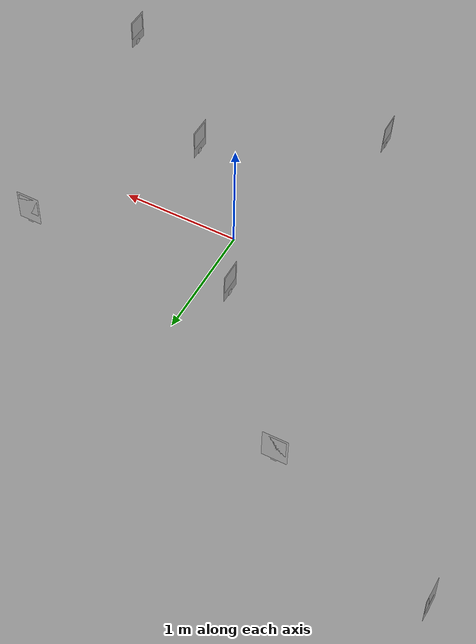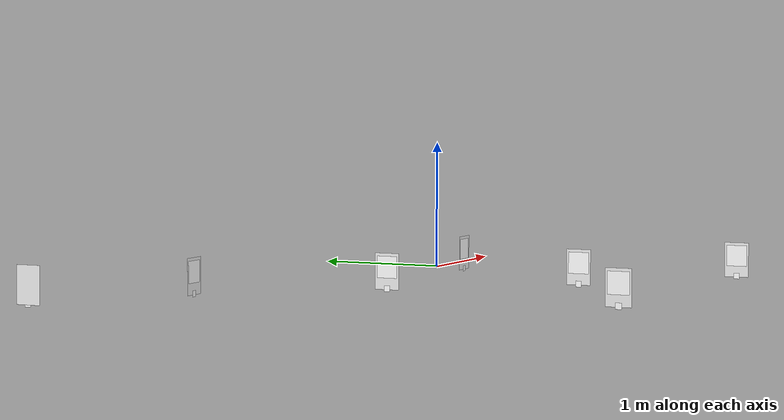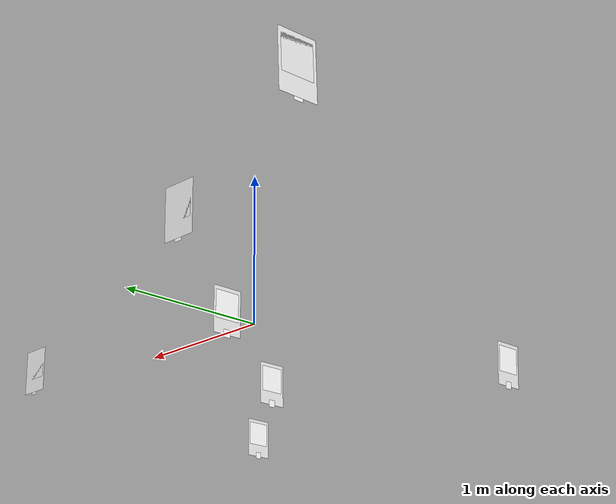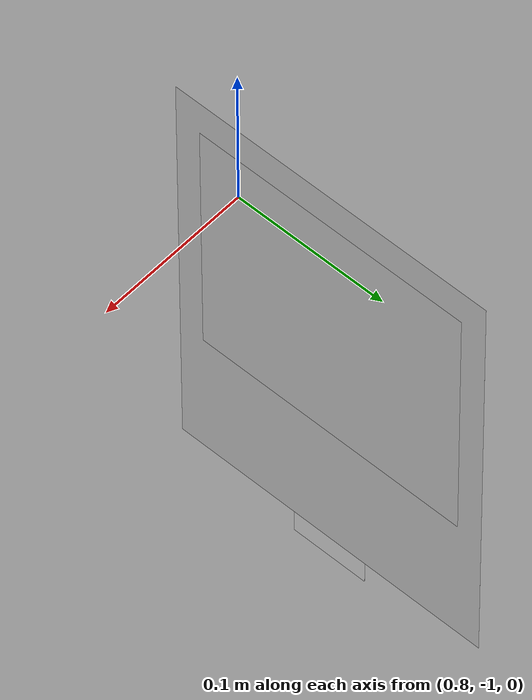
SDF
<?xml version='1.0'?>
<sdf version='1.7'>
  <model name='aruco_world'>
    <model name='aruco_visual_marker_1_pad'>
      <frame name='aruco_visual_marker_1::__model__' attached_to='aruco_visual_marker_1::marker'>
        <pose relative_to='__model__'>0 0 0 0 -0 0</pose>
      </frame>
      <link name='aruco_visual_marker_1::marker'>
        <pose>0 0 0 0 -0 0</pose>
        <visual name='visual'>
          <geometry>
            <box>
              <size>0.1778 0.1778 1e-05</size>
            </box>
          </geometry>
          <material>
            <script>
              <uri>model://aruco_visual_marker_1/materials/scripts</uri>
              <uri>model://aruco_visual_marker_1/materials/textures</uri>
              <name>ArucoVisualMarker1/Marker</name>
            </script>
            <ambient>1 1 1 1</ambient>
            <diffuse>1 1 1 1</diffuse>
            <specular>0 0 0 1</specular>
            <emissive>1 1 1 0</emissive>
            <shader type='vertex'>
              <normal_map>__default__</normal_map>
            </shader>
          </material>
          <pose>0 0 0 0 -0 0</pose>
          <cast_shadows>1</cast_shadows>
          <transparency>0</transparency>
        </visual>
        <collision name='collision'>
          <laser_retro>0</laser_retro>
          <max_contacts>10</max_contacts>
          <pose>0 0 0 0 -0 0</pose>
          <geometry>
            <box>
              <size>0.1778 0.1778 1e-05</size>
            </box>
          </geometry>
        </collision>
      </link>
      <link name='aruco_visual_marker_1::marker_pad'>
        <pose>0 0 -1e-05 0 -0 0</pose>
        <visual name='visual'>
          <geometry>
            <box>
              <size>0.1778 0.1778 1e-05</size>
            </box>
          </geometry>
          <material>
            <lighting>1</lighting>
            <script>
              <uri>file://media/materials/scripts/gazebo.material</uri>
              <name>Gazebo/White</name>
            </script>
            <ambient>0.3 0.3 0.3 1</ambient>
            <diffuse>0.7 0.7 0.7 1</diffuse>
            <specular>0.01 0.01 0.01 1</specular>
            <emissive>1 1 1 0</emissive>
            <shader type='vertex'>
              <normal_map>__default__</normal_map>
            </shader>
          </material>
          <cast_shadows>1</cast_shadows>
          <transparency>0</transparency>
        </visual>
        <collision name='collision'>
          <laser_retro>0</laser_retro>
          <max_contacts>10</max_contacts>
          <pose>0 0 0 0 -0 0</pose>
          <geometry>
            <box>
              <size>0.1778 0.1778 1e-05</size>
            </box>
          </geometry>
        </collision>
      </link>
      <joint name='aruco_visual_marker_1::marker_JOINT_marker_pad' type='revolute'>
        <parent>aruco_visual_marker_1::marker</parent>
        <child>aruco_visual_marker_1::marker_pad</child>
        <pose>0 0 0 0 -0 0</pose>
        <axis>
          <xyz>0 0 1</xyz>
          <limit>
            <upper>0</upper>
            <lower>0</lower>
          </limit>
        </axis>
      </joint>
      <static>1</static>
      <allow_auto_disable>1</allow_auto_disable>
      <link name='marker_pad_large'>
        <pose>-0.035 0 -1e-05 0 -0 0</pose>
        <visual name='visual'>
          <geometry>
            <box>
              <size>0.297 0.21 1e-05</size>
            </box>
          </geometry>
          <material>
            <lighting>1</lighting>
            <script>
              <uri>file://media/materials/scripts/gazebo.material</uri>
              <name>Gazebo/White</name>
            </script>
            <ambient>0.3 0.3 0.3 1</ambient>
            <diffuse>0.7 0.7 0.7 1</diffuse>
            <specular>0.01 0.01 0.01 1</specular>
            <emissive>1 1 1 0</emissive>
            <shader type='vertex'>
              <normal_map>__default__</normal_map>
            </shader>
          </material>
          <cast_shadows>1</cast_shadows>
          <transparency>0</transparency>
        </visual>
        <collision name='collision'>
          <laser_retro>0</laser_retro>
          <max_contacts>10</max_contacts>
          <pose>0 0 0 0 -0 0</pose>
          <geometry>
            <box>
              <size>0.297 0.21 1e-05</size>
            </box>
          </geometry>
          <surface>
            <friction>
              <ode>
                <mu>1</mu>
                <mu2>1</mu2>
                <fdir1>0 0 0</fdir1>
                <slip1>0</slip1>
                <slip2>0</slip2>
              </ode>
              <torsional>
                <coefficient>1</coefficient>
                <patch_radius>0</patch_radius>
                <surface_radius>0</surface_radius>
                <use_patch_radius>1</use_patch_radius>
                <ode>
                  <slip>0</slip>
                </ode>
              </torsional>
            </friction>
            <bounce>
              <restitution_coefficient>0</restitution_coefficient>
              <threshold>1e+06</threshold>
            </bounce>
            <contact>
              <collide_without_contact>0</collide_without_contact>
              <collide_without_contact_bitmask>1</collide_without_contact_bitmask>
              <collide_bitmask>1</collide_bitmask>
              <ode>
                <soft_cfm>0</soft_cfm>
                <soft_erp>0.2</soft_erp>
                <kp>1e+13</kp>
                <kd>1</kd>
                <max_vel>0.01</max_vel>
                <min_depth>0</min_depth>
              </ode>
              <bullet>
                <split_impulse>1</split_impulse>
                <split_impulse_penetration_threshold>-0.01</split_impulse_penetration_threshold>
                <soft_cfm>0</soft_cfm>
                <soft_erp>0.2</soft_erp>
                <kp>1e+13</kp>
                <kd>1</kd>
              </bullet>
            </contact>
          </surface>
        </collision>
      </link>
      <link name='marker_num'>
        <pose>-0.175 0 0 0 -0 0</pose>
        <visual name='visual'>
          <geometry>
            <box>
              <size>0.05 0.05 1e-05</size>
            </box>
          </geometry>
          <material>
            <script>
              <uri>model://aruco_visual_marker_1_pad/materials/scripts</uri>
              <uri>model://aruco_visual_marker_1_pad/materials/textures</uri>
              <name>ArucoVisualMarker1/Num</name>
            </script>
            <ambient>1 1 1 1</ambient>
            <diffuse>1 1 1 1</diffuse>
            <specular>0 0 0 1</specular>
            <emissive>1 1 1 0</emissive>
            <shader type='vertex'>
              <normal_map>__default__</normal_map>
            </shader>
          </material>
          <pose>0 0 0 0 -0 0</pose>
          <cast_shadows>1</cast_shadows>
          <transparency>0</transparency>
        </visual>
        <collision name='collision'>
          <laser_retro>0</laser_retro>
          <max_contacts>10</max_contacts>
          <pose>0 0 0 0 -0 0</pose>
          <geometry>
            <box>
              <size>0.05 0.05 1e-05</size>
            </box>
          </geometry>
          <surface>
            <friction>
              <ode>
                <mu>1</mu>
                <mu2>1</mu2>
                <fdir1>0 0 0</fdir1>
                <slip1>0</slip1>
                <slip2>0</slip2>
              </ode>
              <torsional>
                <coefficient>1</coefficient>
                <patch_radius>0</patch_radius>
                <surface_radius>0</surface_radius>
                <use_patch_radius>1</use_patch_radius>
                <ode>
                  <slip>0</slip>
                </ode>
              </torsional>
            </friction>
            <bounce>
              <restitution_coefficient>0</restitution_coefficient>
              <threshold>1e+06</threshold>
            </bounce>
            <contact>
              <collide_without_contact>0</collide_without_contact>
              <collide_without_contact_bitmask>1</collide_without_contact_bitmask>
              <collide_bitmask>1</collide_bitmask>
              <ode>
                <soft_cfm>0</soft_cfm>
                <soft_erp>0.2</soft_erp>
                <kp>1e+13</kp>
                <kd>1</kd>
                <max_vel>0.01</max_vel>
                <min_depth>0</min_depth>
              </ode>
              <bullet>
                <split_impulse>1</split_impulse>
                <split_impulse_penetration_threshold>-0.01</split_impulse_penetration_threshold>
                <soft_cfm>0</soft_cfm>
                <soft_erp>0.2</soft_erp>
                <kp>1e+13</kp>
                <kd>1</kd>
              </bullet>
            </contact>
          </surface>
        </collision>
      </link>
      <joint name='marker_JOINT_marker_pad_large' type='revolute'>
        <parent>aruco_visual_marker_1::marker</parent>
        <child>marker_pad_large</child>
        <axis>
          <xyz>0 0 1</xyz>
          <limit>
            <upper>0</upper>
            <lower>0</lower>
          </limit>
        </axis>
      </joint>
      <joint name='pad_large_JOINT_marker_num' type='revolute'>
        <parent>marker_pad_large</parent>
        <child>marker_num</child>
        <axis>
          <xyz>0 0 1</xyz>
          <limit>
            <upper>0</upper>
            <lower>0</lower>
          </limit>
        </axis>
      </joint>
      <static>1</static>
      <allow_auto_disable>1</allow_auto_disable>
      <pose>-0.588928 -1.75946 -0.004274 3.14159 -1.5354 3.14159</pose>
    </model>
    <model name='aruco_visual_marker_2_pad'>
      <frame name='aruco_visual_marker_2::__model__' attached_to='aruco_visual_marker_2::marker'>
        <pose relative_to='__model__'>0 0 0 0 -0 0</pose>
      </frame>
      <link name='aruco_visual_marker_2::marker'>
        <pose>0 0 0 0 -0 0</pose>
        <visual name='visual'>
          <geometry>
            <box>
              <size>0.1778 0.1778 1e-05</size>
            </box>
          </geometry>
          <material>
            <script>
              <uri>model://aruco_visual_marker_2/materials/scripts</uri>
              <uri>model://aruco_visual_marker_2/materials/textures</uri>
              <name>ArucoVisualMarker2/Marker</name>
            </script>
            <ambient>1 1 1 1</ambient>
            <diffuse>1 1 1 1</diffuse>
            <specular>0 0 0 1</specular>
            <emissive>1 1 1 0</emissive>
            <shader type='vertex'>
              <normal_map>__default__</normal_map>
            </shader>
          </material>
          <pose>0 0 0 0 -0 0</pose>
          <cast_shadows>1</cast_shadows>
          <transparency>0</transparency>
        </visual>
        <collision name='collision'>
          <laser_retro>0</laser_retro>
          <max_contacts>10</max_contacts>
          <pose>0 0 0 0 -0 0</pose>
          <geometry>
            <box>
              <size>0.1778 0.1778 1e-05</size>
            </box>
          </geometry>
        </collision>
      </link>
      <link name='aruco_visual_marker_2::marker_pad'>
        <pose>0 0 -1e-05 0 -0 0</pose>
        <visual name='visual'>
          <geometry>
            <box>
              <size>0.1778 0.1778 1e-05</size>
            </box>
          </geometry>
          <material>
            <lighting>1</lighting>
            <script>
              <uri>file://media/materials/scripts/gazebo.material</uri>
              <name>Gazebo/White</name>
            </script>
            <ambient>0.3 0.3 0.3 1</ambient>
            <diffuse>0.7 0.7 0.7 1</diffuse>
            <specular>0.01 0.01 0.01 1</specular>
            <emissive>1 1 1 0</emissive>
            <shader type='vertex'>
              <normal_map>__default__</normal_map>
            </shader>
          </material>
          <cast_shadows>1</cast_shadows>
          <transparency>0</transparency>
        </visual>
        <collision name='collision'>
          <laser_retro>0</laser_retro>
          <max_contacts>10</max_contacts>
          <pose>0 0 0 0 -0 0</pose>
          <geometry>
            <box>
              <size>0.1778 0.1778 1e-05</size>
            </box>
          </geometry>
        </collision>
      </link>
      <joint name='aruco_visual_marker_2::marker_JOINT_marker_pad' type='revolute'>
        <parent>aruco_visual_marker_2::marker</parent>
        <child>aruco_visual_marker_2::marker_pad</child>
        <pose>0 0 0 0 -0 0</pose>
        <axis>
          <xyz>0 0 1</xyz>
          <limit>
            <upper>0</upper>
            <lower>0</lower>
          </limit>
        </axis>
      </joint>
      <static>1</static>
      <allow_auto_disable>1</allow_auto_disable>
      <link name='marker_pad_large'>
        <pose>-0.035 0 -1e-05 0 -0 0</pose>
        <visual name='visual'>
          <geometry>
            <box>
              <size>0.297 0.21 1e-05</size>
            </box>
          </geometry>
          <material>
            <lighting>1</lighting>
            <script>
              <uri>file://media/materials/scripts/gazebo.material</uri>
              <name>Gazebo/White</name>
            </script>
            <ambient>0.3 0.3 0.3 1</ambient>
            <diffuse>0.7 0.7 0.7 1</diffuse>
            <specular>0.01 0.01 0.01 1</specular>
            <emissive>1 1 1 0</emissive>
            <shader type='vertex'>
              <normal_map>__default__</normal_map>
            </shader>
          </material>
          <cast_shadows>1</cast_shadows>
          <transparency>0</transparency>
        </visual>
        <collision name='collision'>
          <laser_retro>0</laser_retro>
          <max_contacts>10</max_contacts>
          <pose>0 0 0 0 -0 0</pose>
          <geometry>
            <box>
              <size>0.297 0.21 1e-05</size>
            </box>
          </geometry>
          <surface>
            <friction>
              <ode>
                <mu>1</mu>
                <mu2>1</mu2>
                <fdir1>0 0 0</fdir1>
                <slip1>0</slip1>
                <slip2>0</slip2>
              </ode>
              <torsional>
                <coefficient>1</coefficient>
                <patch_radius>0</patch_radius>
                <surface_radius>0</surface_radius>
                <use_patch_radius>1</use_patch_radius>
                <ode>
                  <slip>0</slip>
                </ode>
              </torsional>
            </friction>
            <bounce>
              <restitution_coefficient>0</restitution_coefficient>
              <threshold>1e+06</threshold>
            </bounce>
            <contact>
              <collide_without_contact>0</collide_without_contact>
              <collide_without_contact_bitmask>1</collide_without_contact_bitmask>
              <collide_bitmask>1</collide_bitmask>
              <ode>
                <soft_cfm>0</soft_cfm>
                <soft_erp>0.2</soft_erp>
                <kp>1e+13</kp>
                <kd>1</kd>
                <max_vel>0.01</max_vel>
                <min_depth>0</min_depth>
              </ode>
              <bullet>
                <split_impulse>1</split_impulse>
                <split_impulse_penetration_threshold>-0.01</split_impulse_penetration_threshold>
                <soft_cfm>0</soft_cfm>
                <soft_erp>0.2</soft_erp>
                <kp>1e+13</kp>
                <kd>1</kd>
              </bullet>
            </contact>
          </surface>
        </collision>
      </link>
      <link name='marker_num'>
        <pose>-0.175 0 0 0 -0 0</pose>
        <visual name='visual'>
          <geometry>
            <box>
              <size>0.05 0.05 1e-05</size>
            </box>
          </geometry>
          <material>
            <script>
              <uri>model://aruco_visual_marker_2_pad/materials/scripts</uri>
              <uri>model://aruco_visual_marker_2_pad/materials/textures</uri>
              <name>ArucoVisualMarker2/Num</name>
            </script>
            <ambient>1 1 1 1</ambient>
            <diffuse>1 1 1 1</diffuse>
            <specular>0 0 0 1</specular>
            <emissive>1 1 1 0</emissive>
            <shader type='vertex'>
              <normal_map>__default__</normal_map>
            </shader>
          </material>
          <pose>0 0 0 0 -0 0</pose>
          <cast_shadows>1</cast_shadows>
          <transparency>0</transparency>
        </visual>
        <collision name='collision'>
          <laser_retro>0</laser_retro>
          <max_contacts>10</max_contacts>
          <pose>0 0 0 0 -0 0</pose>
          <geometry>
            <box>
              <size>0.05 0.05 1e-05</size>
            </box>
          </geometry>
          <surface>
            <friction>
              <ode>
                <mu>1</mu>
                <mu2>1</mu2>
                <fdir1>0 0 0</fdir1>
                <slip1>0</slip1>
                <slip2>0</slip2>
              </ode>
              <torsional>
                <coefficient>1</coefficient>
                <patch_radius>0</patch_radius>
                <surface_radius>0</surface_radius>
                <use_patch_radius>1</use_patch_radius>
                <ode>
                  <slip>0</slip>
                </ode>
              </torsional>
            </friction>
            <bounce>
              <restitution_coefficient>0</restitution_coefficient>
              <threshold>1e+06</threshold>
            </bounce>
            <contact>
              <collide_without_contact>0</collide_without_contact>
              <collide_without_contact_bitmask>1</collide_without_contact_bitmask>
              <collide_bitmask>1</collide_bitmask>
              <ode>
                <soft_cfm>0</soft_cfm>
                <soft_erp>0.2</soft_erp>
                <kp>1e+13</kp>
                <kd>1</kd>
                <max_vel>0.01</max_vel>
                <min_depth>0</min_depth>
              </ode>
              <bullet>
                <split_impulse>1</split_impulse>
                <split_impulse_penetration_threshold>-0.01</split_impulse_penetration_threshold>
                <soft_cfm>0</soft_cfm>
                <soft_erp>0.2</soft_erp>
                <kp>1e+13</kp>
                <kd>1</kd>
              </bullet>
            </contact>
          </surface>
        </collision>
      </link>
      <joint name='marker_JOINT_marker_pad_large' type='revolute'>
        <parent>aruco_visual_marker_2::marker</parent>
        <child>marker_pad_large</child>
        <axis>
          <xyz>0 0 1</xyz>
          <limit>
            <upper>0</upper>
            <lower>0</lower>
          </limit>
        </axis>
      </joint>
      <joint name='pad_large_JOINT_marker_num' type='revolute'>
        <parent>marker_pad_large</parent>
        <child>marker_num</child>
        <axis>
          <xyz>0 0 1</xyz>
          <limit>
            <upper>0</upper>
            <lower>0</lower>
          </limit>
        </axis>
      </joint>
      <static>1</static>
      <allow_auto_disable>1</allow_auto_disable>
      <pose>2.06307 -1.90003 -0.008293 0 -1.56813 0</pose>
    </model>
    <model name='aruco_visual_marker_3_pad'>
      <frame name='aruco_visual_marker_3::__model__' attached_to='aruco_visual_marker_3::marker'>
        <pose relative_to='__model__'>0 0 0 0 -0 0</pose>
      </frame>
      <link name='aruco_visual_marker_3::marker'>
        <pose>0 0 0 0 -0 0</pose>
        <visual name='visual'>
          <geometry>
            <box>
              <size>0.1778 0.1778 1e-05</size>
            </box>
          </geometry>
          <material>
            <script>
              <uri>model://aruco_visual_marker_3/materials/scripts</uri>
              <uri>model://aruco_visual_marker_3/materials/textures</uri>
              <name>ArucoVisualMarker3/Marker</name>
            </script>
            <ambient>1 1 1 1</ambient>
            <diffuse>1 1 1 1</diffuse>
            <specular>0 0 0 1</specular>
            <emissive>1 1 1 0</emissive>
            <shader type='vertex'>
              <normal_map>__default__</normal_map>
            </shader>
          </material>
          <pose>0 0 0 0 -0 0</pose>
          <cast_shadows>1</cast_shadows>
          <transparency>0</transparency>
        </visual>
        <collision name='collision'>
          <laser_retro>0</laser_retro>
          <max_contacts>10</max_contacts>
          <pose>0 0 0 0 -0 0</pose>
          <geometry>
            <box>
              <size>0.1778 0.1778 1e-05</size>
            </box>
          </geometry>
        </collision>
      </link>
      <link name='aruco_visual_marker_3::marker_pad'>
        <pose>0 0 -1e-05 0 -0 0</pose>
        <visual name='visual'>
          <geometry>
            <box>
              <size>0.1778 0.1778 1e-05</size>
            </box>
          </geometry>
          <material>
            <lighting>1</lighting>
            <script>
              <uri>file://media/materials/scripts/gazebo.material</uri>
              <name>Gazebo/White</name>
            </script>
            <ambient>0.3 0.3 0.3 1</ambient>
            <diffuse>0.7 0.7 0.7 1</diffuse>
            <specular>0.01 0.01 0.01 1</specular>
            <emissive>1 1 1 0</emissive>
            <shader type='vertex'>
              <normal_map>__default__</normal_map>
            </shader>
          </material>
          <cast_shadows>1</cast_shadows>
          <transparency>0</transparency>
        </visual>
        <collision name='collision'>
          <laser_retro>0</laser_retro>
          <max_contacts>10</max_contacts>
          <pose>0 0 0 0 -0 0</pose>
          <geometry>
            <box>
              <size>0.1778 0.1778 1e-05</size>
            </box>
          </geometry>
        </collision>
      </link>
      <joint name='aruco_visual_marker_3::marker_JOINT_marker_pad' type='revolute'>
        <parent>aruco_visual_marker_3::marker</parent>
        <child>aruco_visual_marker_3::marker_pad</child>
        <pose>0 0 0 0 -0 0</pose>
        <axis>
          <xyz>0 0 1</xyz>
          <limit>
            <upper>0</upper>
            <lower>0</lower>
          </limit>
        </axis>
      </joint>
      <static>1</static>
      <allow_auto_disable>1</allow_auto_disable>
      <link name='marker_pad_large'>
        <pose>-0.035 0 -1e-05 0 -0 0</pose>
        <visual name='visual'>
          <geometry>
            <box>
              <size>0.297 0.21 1e-05</size>
            </box>
          </geometry>
          <material>
            <lighting>1</lighting>
            <script>
              <uri>file://media/materials/scripts/gazebo.material</uri>
              <name>Gazebo/White</name>
            </script>
            <ambient>0.3 0.3 0.3 1</ambient>
            <diffuse>0.7 0.7 0.7 1</diffuse>
            <specular>0.01 0.01 0.01 1</specular>
            <emissive>1 1 1 0</emissive>
            <shader type='vertex'>
              <normal_map>__default__</normal_map>
            </shader>
          </material>
          <cast_shadows>1</cast_shadows>
          <transparency>0</transparency>
        </visual>
        <collision name='collision'>
          <laser_retro>0</laser_retro>
          <max_contacts>10</max_contacts>
          <pose>0 0 0 0 -0 0</pose>
          <geometry>
            <box>
              <size>0.297 0.21 1e-05</size>
            </box>
          </geometry>
          <surface>
            <friction>
              <ode>
                <mu>1</mu>
                <mu2>1</mu2>
                <fdir1>0 0 0</fdir1>
                <slip1>0</slip1>
                <slip2>0</slip2>
              </ode>
              <torsional>
                <coefficient>1</coefficient>
                <patch_radius>0</patch_radius>
                <surface_radius>0</surface_radius>
                <use_patch_radius>1</use_patch_radius>
                <ode>
                  <slip>0</slip>
                </ode>
              </torsional>
            </friction>
            <bounce>
              <restitution_coefficient>0</restitution_coefficient>
              <threshold>1e+06</threshold>
            </bounce>
            <contact>
              <collide_without_contact>0</collide_without_contact>
              <collide_without_contact_bitmask>1</collide_without_contact_bitmask>
              <collide_bitmask>1</collide_bitmask>
              <ode>
                <soft_cfm>0</soft_cfm>
                <soft_erp>0.2</soft_erp>
                <kp>1e+13</kp>
                <kd>1</kd>
                <max_vel>0.01</max_vel>
                <min_depth>0</min_depth>
              </ode>
              <bullet>
                <split_impulse>1</split_impulse>
                <split_impulse_penetration_threshold>-0.01</split_impulse_penetration_threshold>
                <soft_cfm>0</soft_cfm>
                <soft_erp>0.2</soft_erp>
                <kp>1e+13</kp>
                <kd>1</kd>
              </bullet>
            </contact>
          </surface>
        </collision>
      </link>
      <link name='marker_num'>
        <pose>-0.175 0 0 0 -0 0</pose>
        <visual name='visual'>
          <geometry>
            <box>
              <size>0.05 0.05 1e-05</size>
            </box>
          </geometry>
          <material>
            <script>
              <uri>model://aruco_visual_marker_3_pad/materials/scripts</uri>
              <uri>model://aruco_visual_marker_3_pad/materials/textures</uri>
              <name>ArucoVisualMarker3/Num</name>
            </script>
            <ambient>1 1 1 1</ambient>
            <diffuse>1 1 1 1</diffuse>
            <specular>0 0 0 1</specular>
            <emissive>1 1 1 0</emissive>
            <shader type='vertex'>
              <normal_map>__default__</normal_map>
            </shader>
          </material>
          <pose>0 0 0 0 -0 0</pose>
          <cast_shadows>1</cast_shadows>
          <transparency>0</transparency>
        </visual>
        <collision name='collision'>
          <laser_retro>0</laser_retro>
          <max_contacts>10</max_contacts>
          <pose>0 0 0 0 -0 0</pose>
          <geometry>
            <box>
              <size>0.05 0.05 1e-05</size>
            </box>
          </geometry>
          <surface>
            <friction>
              <ode>
                <mu>1</mu>
                <mu2>1</mu2>
                <fdir1>0 0 0</fdir1>
                <slip1>0</slip1>
                <slip2>0</slip2>
              </ode>
              <torsional>
                <coefficient>1</coefficient>
                <patch_radius>0</patch_radius>
                <surface_radius>0</surface_radius>
                <use_patch_radius>1</use_patch_radius>
                <ode>
                  <slip>0</slip>
                </ode>
              </torsional>
            </friction>
            <bounce>
              <restitution_coefficient>0</restitution_coefficient>
              <threshold>1e+06</threshold>
            </bounce>
            <contact>
              <collide_without_contact>0</collide_without_contact>
              <collide_without_contact_bitmask>1</collide_without_contact_bitmask>
              <collide_bitmask>1</collide_bitmask>
              <ode>
                <soft_cfm>0</soft_cfm>
                <soft_erp>0.2</soft_erp>
                <kp>1e+13</kp>
                <kd>1</kd>
                <max_vel>0.01</max_vel>
                <min_depth>0</min_depth>
              </ode>
              <bullet>
                <split_impulse>1</split_impulse>
                <split_impulse_penetration_threshold>-0.01</split_impulse_penetration_threshold>
                <soft_cfm>0</soft_cfm>
                <soft_erp>0.2</soft_erp>
                <kp>1e+13</kp>
                <kd>1</kd>
              </bullet>
            </contact>
          </surface>
        </collision>
      </link>
      <joint name='marker_JOINT_marker_pad_large' type='revolute'>
        <parent>aruco_visual_marker_3::marker</parent>
        <child>marker_pad_large</child>
        <axis>
          <xyz>0 0 1</xyz>
          <limit>
            <upper>0</upper>
            <lower>0</lower>
          </limit>
        </axis>
      </joint>
      <joint name='pad_large_JOINT_marker_num' type='revolute'>
        <parent>marker_pad_large</parent>
        <child>marker_num</child>
        <axis>
          <xyz>0 0 1</xyz>
          <limit>
            <upper>0</upper>
            <lower>0</lower>
          </limit>
        </axis>
      </joint>
      <static>1</static>
      <allow_auto_disable>1</allow_auto_disable>
      <pose>1.67501 0.495004 -0.004578 3.14158 -1.56731 -1.57136</pose>
    </model>
    <model name='aruco_visual_marker_4_pad'>
      <frame name='aruco_visual_marker_4::__model__' attached_to='aruco_visual_marker_4::marker'>
        <pose relative_to='__model__'>0 0 0 0 -0 0</pose>
      </frame>
      <link name='aruco_visual_marker_4::marker'>
        <pose>0 0 0 0 -0 0</pose>
        <visual name='visual'>
          <geometry>
            <box>
              <size>0.1778 0.1778 1e-05</size>
            </box>
          </geometry>
          <material>
            <script>
              <uri>model://aruco_visual_marker_4/materials/scripts</uri>
              <uri>model://aruco_visual_marker_4/materials/textures</uri>
              <name>ArucoVisualMarker4/Marker</name>
            </script>
            <ambient>1 1 1 1</ambient>
            <diffuse>1 1 1 1</diffuse>
            <specular>0 0 0 1</specular>
            <emissive>1 1 1 0</emissive>
            <shader type='vertex'>
              <normal_map>__default__</normal_map>
            </shader>
          </material>
          <pose>0 0 0 0 -0 0</pose>
          <cast_shadows>1</cast_shadows>
          <transparency>0</transparency>
        </visual>
        <collision name='collision'>
          <laser_retro>0</laser_retro>
          <max_contacts>10</max_contacts>
          <pose>0 0 0 0 -0 0</pose>
          <geometry>
            <box>
              <size>0.1778 0.1778 1e-05</size>
            </box>
          </geometry>
        </collision>
      </link>
      <link name='aruco_visual_marker_4::marker_pad'>
        <pose>0 0 -1e-05 0 -0 0</pose>
        <visual name='visual'>
          <geometry>
            <box>
              <size>0.1778 0.1778 1e-05</size>
            </box>
          </geometry>
          <material>
            <lighting>1</lighting>
            <script>
              <uri>file://media/materials/scripts/gazebo.material</uri>
              <name>Gazebo/White</name>
            </script>
            <ambient>0.3 0.3 0.3 1</ambient>
            <diffuse>0.7 0.7 0.7 1</diffuse>
            <specular>0.01 0.01 0.01 1</specular>
            <emissive>1 1 1 0</emissive>
            <shader type='vertex'>
              <normal_map>__default__</normal_map>
            </shader>
          </material>
          <cast_shadows>1</cast_shadows>
          <transparency>0</transparency>
        </visual>
        <collision name='collision'>
          <laser_retro>0</laser_retro>
          <max_contacts>10</max_contacts>
          <pose>0 0 0 0 -0 0</pose>
          <geometry>
            <box>
              <size>0.1778 0.1778 1e-05</size>
            </box>
          </geometry>
        </collision>
      </link>
      <joint name='aruco_visual_marker_4::marker_JOINT_marker_pad' type='revolute'>
        <parent>aruco_visual_marker_4::marker</parent>
        <child>aruco_visual_marker_4::marker_pad</child>
        <pose>0 0 0 0 -0 0</pose>
        <axis>
          <xyz>0 0 1</xyz>
          <limit>
            <upper>0</upper>
            <lower>0</lower>
          </limit>
        </axis>
      </joint>
      <static>1</static>
      <allow_auto_disable>1</allow_auto_disable>
      <link name='marker_pad_large'>
        <pose>-0.035 0 -1e-05 0 -0 0</pose>
        <visual name='visual'>
          <geometry>
            <box>
              <size>0.297 0.21 1e-05</size>
            </box>
          </geometry>
          <material>
            <lighting>1</lighting>
            <script>
              <uri>file://media/materials/scripts/gazebo.material</uri>
              <name>Gazebo/White</name>
            </script>
            <ambient>0.3 0.3 0.3 1</ambient>
            <diffuse>0.7 0.7 0.7 1</diffuse>
            <specular>0.01 0.01 0.01 1</specular>
            <emissive>1 1 1 0</emissive>
            <shader type='vertex'>
              <normal_map>__default__</normal_map>
            </shader>
          </material>
          <cast_shadows>1</cast_shadows>
          <transparency>0</transparency>
        </visual>
        <collision name='collision'>
          <laser_retro>0</laser_retro>
          <max_contacts>10</max_contacts>
          <pose>0 0 0 0 -0 0</pose>
          <geometry>
            <box>
              <size>0.297 0.21 1e-05</size>
            </box>
          </geometry>
          <surface>
            <friction>
              <ode>
                <mu>1</mu>
                <mu2>1</mu2>
                <fdir1>0 0 0</fdir1>
                <slip1>0</slip1>
                <slip2>0</slip2>
              </ode>
              <torsional>
                <coefficient>1</coefficient>
                <patch_radius>0</patch_radius>
                <surface_radius>0</surface_radius>
                <use_patch_radius>1</use_patch_radius>
                <ode>
                  <slip>0</slip>
                </ode>
              </torsional>
            </friction>
            <bounce>
              <restitution_coefficient>0</restitution_coefficient>
              <threshold>1e+06</threshold>
            </bounce>
            <contact>
              <collide_without_contact>0</collide_without_contact>
              <collide_without_contact_bitmask>1</collide_without_contact_bitmask>
              <collide_bitmask>1</collide_bitmask>
              <ode>
                <soft_cfm>0</soft_cfm>
                <soft_erp>0.2</soft_erp>
                <kp>1e+13</kp>
                <kd>1</kd>
                <max_vel>0.01</max_vel>
                <min_depth>0</min_depth>
              </ode>
              <bullet>
                <split_impulse>1</split_impulse>
                <split_impulse_penetration_threshold>-0.01</split_impulse_penetration_threshold>
                <soft_cfm>0</soft_cfm>
                <soft_erp>0.2</soft_erp>
                <kp>1e+13</kp>
                <kd>1</kd>
              </bullet>
            </contact>
          </surface>
        </collision>
      </link>
      <link name='marker_num'>
        <pose>-0.175 0 0 0 -0 0</pose>
        <visual name='visual'>
          <geometry>
            <box>
              <size>0.05 0.05 1e-05</size>
            </box>
          </geometry>
          <material>
            <script>
              <uri>model://aruco_visual_marker_4_pad/materials/scripts</uri>
              <uri>model://aruco_visual_marker_4_pad/materials/textures</uri>
              <name>ArucoVisualMarker4/Num</name>
            </script>
            <ambient>1 1 1 1</ambient>
            <diffuse>1 1 1 1</diffuse>
            <specular>0 0 0 1</specular>
            <emissive>1 1 1 0</emissive>
            <shader type='vertex'>
              <normal_map>__default__</normal_map>
            </shader>
          </material>
          <pose>0 0 0 0 -0 0</pose>
          <cast_shadows>1</cast_shadows>
          <transparency>0</transparency>
        </visual>
        <collision name='collision'>
          <laser_retro>0</laser_retro>
          <max_contacts>10</max_contacts>
          <pose>0 0 0 0 -0 0</pose>
          <geometry>
            <box>
              <size>0.05 0.05 1e-05</size>
            </box>
          </geometry>
          <surface>
            <friction>
              <ode>
                <mu>1</mu>
                <mu2>1</mu2>
                <fdir1>0 0 0</fdir1>
                <slip1>0</slip1>
                <slip2>0</slip2>
              </ode>
              <torsional>
                <coefficient>1</coefficient>
                <patch_radius>0</patch_radius>
                <surface_radius>0</surface_radius>
                <use_patch_radius>1</use_patch_radius>
                <ode>
                  <slip>0</slip>
                </ode>
              </torsional>
            </friction>
            <bounce>
              <restitution_coefficient>0</restitution_coefficient>
              <threshold>1e+06</threshold>
            </bounce>
            <contact>
              <collide_without_contact>0</collide_without_contact>
              <collide_without_contact_bitmask>1</collide_without_contact_bitmask>
              <collide_bitmask>1</collide_bitmask>
              <ode>
                <soft_cfm>0</soft_cfm>
                <soft_erp>0.2</soft_erp>
                <kp>1e+13</kp>
                <kd>1</kd>
                <max_vel>0.01</max_vel>
                <min_depth>0</min_depth>
              </ode>
              <bullet>
                <split_impulse>1</split_impulse>
                <split_impulse_penetration_threshold>-0.01</split_impulse_penetration_threshold>
                <soft_cfm>0</soft_cfm>
                <soft_erp>0.2</soft_erp>
                <kp>1e+13</kp>
                <kd>1</kd>
              </bullet>
            </contact>
          </surface>
        </collision>
      </link>
      <joint name='marker_JOINT_marker_pad_large' type='revolute'>
        <parent>aruco_visual_marker_4::marker</parent>
        <child>marker_pad_large</child>
        <axis>
          <xyz>0 0 1</xyz>
          <limit>
            <upper>0</upper>
            <lower>0</lower>
          </limit>
        </axis>
      </joint>
      <joint name='pad_large_JOINT_marker_num' type='revolute'>
        <parent>marker_pad_large</parent>
        <child>marker_num</child>
        <axis>
          <xyz>0 0 1</xyz>
          <limit>
            <upper>0</upper>
            <lower>0</lower>
          </limit>
        </axis>
      </joint>
      <static>1</static>
      <allow_auto_disable>1</allow_auto_disable>
      <pose>-0.168932 0.371408 -0.007178 0 -1.56943 0</pose>
    </model>
    <model name='aruco_visual_marker_5_pad'>
      <frame name='aruco_visual_marker_5::__model__' attached_to='aruco_visual_marker_5::marker'>
        <pose relative_to='__model__'>0 0 0 0 -0 0</pose>
      </frame>
      <link name='aruco_visual_marker_5::marker'>
        <pose>0 0 0 0 -0 0</pose>
        <visual name='visual'>
          <geometry>
            <box>
              <size>0.1778 0.1778 1e-05</size>
            </box>
          </geometry>
          <material>
            <script>
              <uri>model://aruco_visual_marker_5/materials/scripts</uri>
              <uri>model://aruco_visual_marker_5/materials/textures</uri>
              <name>ArucoVisualMarker5/Marker</name>
            </script>
            <ambient>1 1 1 1</ambient>
            <diffuse>1 1 1 1</diffuse>
            <specular>0 0 0 1</specular>
            <emissive>1 1 1 0</emissive>
            <shader type='vertex'>
              <normal_map>__default__</normal_map>
            </shader>
          </material>
          <pose>0 0 0 0 -0 0</pose>
          <cast_shadows>1</cast_shadows>
          <transparency>0</transparency>
        </visual>
        <collision name='collision'>
          <laser_retro>0</laser_retro>
          <max_contacts>10</max_contacts>
          <pose>0 0 0 0 -0 0</pose>
          <geometry>
            <box>
              <size>0.1778 0.1778 1e-05</size>
            </box>
          </geometry>
        </collision>
      </link>
      <link name='aruco_visual_marker_5::marker_pad'>
        <pose>0 0 -1e-05 0 -0 0</pose>
        <visual name='visual'>
          <geometry>
            <box>
              <size>0.1778 0.1778 1e-05</size>
            </box>
          </geometry>
          <material>
            <lighting>1</lighting>
            <script>
              <uri>file://media/materials/scripts/gazebo.material</uri>
              <name>Gazebo/White</name>
            </script>
            <ambient>0.3 0.3 0.3 1</ambient>
            <diffuse>0.7 0.7 0.7 1</diffuse>
            <specular>0.01 0.01 0.01 1</specular>
            <emissive>1 1 1 0</emissive>
            <shader type='vertex'>
              <normal_map>__default__</normal_map>
            </shader>
          </material>
          <cast_shadows>1</cast_shadows>
          <transparency>0</transparency>
        </visual>
        <collision name='collision'>
          <laser_retro>0</laser_retro>
          <max_contacts>10</max_contacts>
          <pose>0 0 0 0 -0 0</pose>
          <geometry>
            <box>
              <size>0.1778 0.1778 1e-05</size>
            </box>
          </geometry>
        </collision>
      </link>
      <joint name='aruco_visual_marker_5::marker_JOINT_marker_pad' type='revolute'>
        <parent>aruco_visual_marker_5::marker</parent>
        <child>aruco_visual_marker_5::marker_pad</child>
        <pose>0 0 0 0 -0 0</pose>
        <axis>
          <xyz>0 0 1</xyz>
          <limit>
            <upper>0</upper>
            <lower>0</lower>
          </limit>
        </axis>
      </joint>
      <static>1</static>
      <allow_auto_disable>1</allow_auto_disable>
      <link name='marker_pad_large'>
        <pose>-0.035 0 -1e-05 0 -0 0</pose>
        <visual name='visual'>
          <geometry>
            <box>
              <size>0.297 0.21 1e-05</size>
            </box>
          </geometry>
          <material>
            <lighting>1</lighting>
            <script>
              <uri>file://media/materials/scripts/gazebo.material</uri>
              <name>Gazebo/White</name>
            </script>
            <ambient>0.3 0.3 0.3 1</ambient>
            <diffuse>0.7 0.7 0.7 1</diffuse>
            <specular>0.01 0.01 0.01 1</specular>
            <emissive>1 1 1 0</emissive>
            <shader type='vertex'>
              <normal_map>__default__</normal_map>
            </shader>
          </material>
          <cast_shadows>1</cast_shadows>
          <transparency>0</transparency>
        </visual>
        <collision name='collision'>
          <laser_retro>0</laser_retro>
          <max_contacts>10</max_contacts>
          <pose>0 0 0 0 -0 0</pose>
          <geometry>
            <box>
              <size>0.297 0.21 1e-05</size>
            </box>
          </geometry>
          <surface>
            <friction>
              <ode>
                <mu>1</mu>
                <mu2>1</mu2>
                <fdir1>0 0 0</fdir1>
                <slip1>0</slip1>
                <slip2>0</slip2>
              </ode>
              <torsional>
                <coefficient>1</coefficient>
                <patch_radius>0</patch_radius>
                <surface_radius>0</surface_radius>
                <use_patch_radius>1</use_patch_radius>
                <ode>
                  <slip>0</slip>
                </ode>
              </torsional>
            </friction>
            <bounce>
              <restitution_coefficient>0</restitution_coefficient>
              <threshold>1e+06</threshold>
            </bounce>
            <contact>
              <collide_without_contact>0</collide_without_contact>
              <collide_without_contact_bitmask>1</collide_without_contact_bitmask>
              <collide_bitmask>1</collide_bitmask>
              <ode>
                <soft_cfm>0</soft_cfm>
                <soft_erp>0.2</soft_erp>
                <kp>1e+13</kp>
                <kd>1</kd>
                <max_vel>0.01</max_vel>
                <min_depth>0</min_depth>
              </ode>
              <bullet>
                <split_impulse>1</split_impulse>
                <split_impulse_penetration_threshold>-0.01</split_impulse_penetration_threshold>
                <soft_cfm>0</soft_cfm>
                <soft_erp>0.2</soft_erp>
                <kp>1e+13</kp>
                <kd>1</kd>
              </bullet>
            </contact>
          </surface>
        </collision>
      </link>
      <link name='marker_num'>
        <pose>-0.175 0 0 0 -0 0</pose>
        <visual name='visual'>
          <geometry>
            <box>
              <size>0.05 0.05 1e-05</size>
            </box>
          </geometry>
          <material>
            <script>
              <uri>model://aruco_visual_marker_5_pad/materials/scripts</uri>
              <uri>model://aruco_visual_marker_5_pad/materials/textures</uri>
              <name>ArucoVisualMarker5/Num</name>
            </script>
            <ambient>1 1 1 1</ambient>
            <diffuse>1 1 1 1</diffuse>
            <specular>0 0 0 1</specular>
            <emissive>1 1 1 0</emissive>
            <shader type='vertex'>
              <normal_map>__default__</normal_map>
            </shader>
          </material>
          <pose>0 0 0 0 -0 0</pose>
          <cast_shadows>1</cast_shadows>
          <transparency>0</transparency>
        </visual>
        <collision name='collision'>
          <laser_retro>0</laser_retro>
          <max_contacts>10</max_contacts>
          <pose>0 0 0 0 -0 0</pose>
          <geometry>
            <box>
              <size>0.05 0.05 1e-05</size>
            </box>
          </geometry>
          <surface>
            <friction>
              <ode>
                <mu>1</mu>
                <mu2>1</mu2>
                <fdir1>0 0 0</fdir1>
                <slip1>0</slip1>
                <slip2>0</slip2>
              </ode>
              <torsional>
                <coefficient>1</coefficient>
                <patch_radius>0</patch_radius>
                <surface_radius>0</surface_radius>
                <use_patch_radius>1</use_patch_radius>
                <ode>
                  <slip>0</slip>
                </ode>
              </torsional>
            </friction>
            <bounce>
              <restitution_coefficient>0</restitution_coefficient>
              <threshold>1e+06</threshold>
            </bounce>
            <contact>
              <collide_without_contact>0</collide_without_contact>
              <collide_without_contact_bitmask>1</collide_without_contact_bitmask>
              <collide_bitmask>1</collide_bitmask>
              <ode>
                <soft_cfm>0</soft_cfm>
                <soft_erp>0.2</soft_erp>
                <kp>1e+13</kp>
                <kd>1</kd>
                <max_vel>0.01</max_vel>
                <min_depth>0</min_depth>
              </ode>
              <bullet>
                <split_impulse>1</split_impulse>
                <split_impulse_penetration_threshold>-0.01</split_impulse_penetration_threshold>
                <soft_cfm>0</soft_cfm>
                <soft_erp>0.2</soft_erp>
                <kp>1e+13</kp>
                <kd>1</kd>
              </bullet>
            </contact>
          </surface>
        </collision>
      </link>
      <joint name='marker_JOINT_marker_pad_large' type='revolute'>
        <parent>aruco_visual_marker_5::marker</parent>
        <child>marker_pad_large</child>
        <axis>
          <xyz>0 0 1</xyz>
          <limit>
            <upper>0</upper>
            <lower>0</lower>
          </limit>
        </axis>
      </joint>
      <joint name='pad_large_JOINT_marker_num' type='revolute'>
        <parent>marker_pad_large</parent>
        <child>marker_num</child>
        <axis>
          <xyz>0 0 1</xyz>
          <limit>
            <upper>0</upper>
            <lower>0</lower>
          </limit>
        </axis>
      </joint>
      <static>1</static>
      <allow_auto_disable>1</allow_auto_disable>
      <pose>-2.62381 2.12948 0.035021 3.12151 -1.54126 0</pose>
    </model>
    <model name='aruco_visual_marker_6_pad'>
      <frame name='aruco_visual_marker_6::__model__' attached_to='aruco_visual_marker_6::marker'>
        <pose relative_to='__model__'>0 0 0 0 -0 0</pose>
      </frame>
      <link name='aruco_visual_marker_6::marker'>
        <pose>0 0 0 0 -0 0</pose>
        <visual name='visual'>
          <geometry>
            <box>
              <size>0.1778 0.1778 1e-05</size>
            </box>
          </geometry>
          <material>
            <script>
              <uri>model://aruco_visual_marker_6/materials/scripts</uri>
              <uri>model://aruco_visual_marker_6/materials/textures</uri>
              <name>ArucoVisualMarker6/Marker</name>
            </script>
            <ambient>1 1 1 1</ambient>
            <diffuse>1 1 1 1</diffuse>
            <specular>0 0 0 1</specular>
            <emissive>1 1 1 0</emissive>
            <shader type='vertex'>
              <normal_map>__default__</normal_map>
            </shader>
          </material>
          <pose>0 0 0 0 -0 0</pose>
          <cast_shadows>1</cast_shadows>
          <transparency>0</transparency>
        </visual>
        <collision name='collision'>
          <laser_retro>0</laser_retro>
          <max_contacts>10</max_contacts>
          <pose>0 0 0 0 -0 0</pose>
          <geometry>
            <box>
              <size>0.1778 0.1778 1e-05</size>
            </box>
          </geometry>
        </collision>
      </link>
      <link name='aruco_visual_marker_6::marker_pad'>
        <pose>0 0 -1e-05 0 -0 0</pose>
        <visual name='visual'>
          <geometry>
            <box>
              <size>0.1778 0.1778 1e-05</size>
            </box>
          </geometry>
          <material>
            <lighting>1</lighting>
            <script>
              <uri>file://media/materials/scripts/gazebo.material</uri>
              <name>Gazebo/White</name>
            </script>
            <ambient>0.3 0.3 0.3 1</ambient>
            <diffuse>0.7 0.7 0.7 1</diffuse>
            <specular>0.01 0.01 0.01 1</specular>
            <emissive>1 1 1 0</emissive>
            <shader type='vertex'>
              <normal_map>__default__</normal_map>
            </shader>
          </material>
          <cast_shadows>1</cast_shadows>
          <transparency>0</transparency>
        </visual>
        <collision name='collision'>
          <laser_retro>0</laser_retro>
          <max_contacts>10</max_contacts>
          <pose>0 0 0 0 -0 0</pose>
          <geometry>
            <box>
              <size>0.1778 0.1778 1e-05</size>
            </box>
          </geometry>
        </collision>
      </link>
      <joint name='aruco_visual_marker_6::marker_JOINT_marker_pad' type='revolute'>
        <parent>aruco_visual_marker_6::marker</parent>
        <child>aruco_visual_marker_6::marker_pad</child>
        <pose>0 0 0 0 -0 0</pose>
        <axis>
          <xyz>0 0 1</xyz>
          <limit>
            <upper>0</upper>
            <lower>0</lower>
          </limit>
        </axis>
      </joint>
      <static>1</static>
      <allow_auto_disable>1</allow_auto_disable>
      <link name='marker_pad_large'>
        <pose>-0.035 0 -1e-05 0 -0 0</pose>
        <visual name='visual'>
          <geometry>
            <box>
              <size>0.297 0.21 1e-05</size>
            </box>
          </geometry>
          <material>
            <lighting>1</lighting>
            <script>
              <uri>file://media/materials/scripts/gazebo.material</uri>
              <name>Gazebo/White</name>
            </script>
            <ambient>0.3 0.3 0.3 1</ambient>
            <diffuse>0.7 0.7 0.7 1</diffuse>
            <specular>0.01 0.01 0.01 1</specular>
            <emissive>1 1 1 0</emissive>
            <shader type='vertex'>
              <normal_map>__default__</normal_map>
            </shader>
          </material>
          <cast_shadows>1</cast_shadows>
          <transparency>0</transparency>
        </visual>
        <collision name='collision'>
          <laser_retro>0</laser_retro>
          <max_contacts>10</max_contacts>
          <pose>0 0 0 0 -0 0</pose>
          <geometry>
            <box>
              <size>0.297 0.21 1e-05</size>
            </box>
          </geometry>
          <surface>
            <friction>
              <ode>
                <mu>1</mu>
                <mu2>1</mu2>
                <fdir1>0 0 0</fdir1>
                <slip1>0</slip1>
                <slip2>0</slip2>
              </ode>
              <torsional>
                <coefficient>1</coefficient>
                <patch_radius>0</patch_radius>
                <surface_radius>0</surface_radius>
                <use_patch_radius>1</use_patch_radius>
                <ode>
                  <slip>0</slip>
                </ode>
              </torsional>
            </friction>
            <bounce>
              <restitution_coefficient>0</restitution_coefficient>
              <threshold>1e+06</threshold>
            </bounce>
            <contact>
              <collide_without_contact>0</collide_without_contact>
              <collide_without_contact_bitmask>1</collide_without_contact_bitmask>
              <collide_bitmask>1</collide_bitmask>
              <ode>
                <soft_cfm>0</soft_cfm>
                <soft_erp>0.2</soft_erp>
                <kp>1e+13</kp>
                <kd>1</kd>
                <max_vel>0.01</max_vel>
                <min_depth>0</min_depth>
              </ode>
              <bullet>
                <split_impulse>1</split_impulse>
                <split_impulse_penetration_threshold>-0.01</split_impulse_penetration_threshold>
                <soft_cfm>0</soft_cfm>
                <soft_erp>0.2</soft_erp>
                <kp>1e+13</kp>
                <kd>1</kd>
              </bullet>
            </contact>
          </surface>
        </collision>
      </link>
      <link name='marker_num'>
        <pose>-0.175 0 0 0 -0 0</pose>
        <visual name='visual'>
          <geometry>
            <box>
              <size>0.05 0.05 1e-05</size>
            </box>
          </geometry>
          <material>
            <script>
              <uri>model://aruco_visual_marker_6_pad/materials/scripts</uri>
              <uri>model://aruco_visual_marker_6_pad/materials/textures</uri>
              <name>ArucoVisualMarker6/Num</name>
            </script>
            <ambient>1 1 1 1</ambient>
            <diffuse>1 1 1 1</diffuse>
            <specular>0 0 0 1</specular>
            <emissive>1 1 1 0</emissive>
            <shader type='vertex'>
              <normal_map>__default__</normal_map>
            </shader>
          </material>
          <pose>0 0 0 0 -0 0</pose>
          <cast_shadows>1</cast_shadows>
          <transparency>0</transparency>
        </visual>
        <collision name='collision'>
          <laser_retro>0</laser_retro>
          <max_contacts>10</max_contacts>
          <pose>0 0 0 0 -0 0</pose>
          <geometry>
            <box>
              <size>0.05 0.05 1e-05</size>
            </box>
          </geometry>
          <surface>
            <friction>
              <ode>
                <mu>1</mu>
                <mu2>1</mu2>
                <fdir1>0 0 0</fdir1>
                <slip1>0</slip1>
                <slip2>0</slip2>
              </ode>
              <torsional>
                <coefficient>1</coefficient>
                <patch_radius>0</patch_radius>
                <surface_radius>0</surface_radius>
                <use_patch_radius>1</use_patch_radius>
                <ode>
                  <slip>0</slip>
                </ode>
              </torsional>
            </friction>
            <bounce>
              <restitution_coefficient>0</restitution_coefficient>
              <threshold>1e+06</threshold>
            </bounce>
            <contact>
              <collide_without_contact>0</collide_without_contact>
              <collide_without_contact_bitmask>1</collide_without_contact_bitmask>
              <collide_bitmask>1</collide_bitmask>
              <ode>
                <soft_cfm>0</soft_cfm>
                <soft_erp>0.2</soft_erp>
                <kp>1e+13</kp>
                <kd>1</kd>
                <max_vel>0.01</max_vel>
                <min_depth>0</min_depth>
              </ode>
              <bullet>
                <split_impulse>1</split_impulse>
                <split_impulse_penetration_threshold>-0.01</split_impulse_penetration_threshold>
                <soft_cfm>0</soft_cfm>
                <soft_erp>0.2</soft_erp>
                <kp>1e+13</kp>
                <kd>1</kd>
              </bullet>
            </contact>
          </surface>
        </collision>
      </link>
      <joint name='marker_JOINT_marker_pad_large' type='revolute'>
        <parent>aruco_visual_marker_6::marker</parent>
        <child>marker_pad_large</child>
        <axis>
          <xyz>0 0 1</xyz>
          <limit>
            <upper>0</upper>
            <lower>0</lower>
          </limit>
        </axis>
      </joint>
      <joint name='pad_large_JOINT_marker_num' type='revolute'>
        <parent>marker_pad_large</parent>
        <child>marker_num</child>
        <axis>
          <xyz>0 0 1</xyz>
          <limit>
            <upper>0</upper>
            <lower>0</lower>
          </limit>
        </axis>
      </joint>
      <static>1</static>
      <allow_auto_disable>1</allow_auto_disable>
      <pose>0.828805 -0.910609 -0.006094 0 -1.56525 0</pose>
    </model>
    <model name='aruco_visual_marker_7_pad'>
      <frame name='aruco_visual_marker_7::__model__' attached_to='aruco_visual_marker_7::marker'>
        <pose relative_to='__model__'>0 0 0 0 -0 0</pose>
      </frame>
      <link name='aruco_visual_marker_7::marker'>
        <pose>0 0 0 0 -0 0</pose>
        <visual name='visual'>
          <geometry>
            <box>
              <size>0.1778 0.1778 1e-05</size>
            </box>
          </geometry>
          <material>
            <script>
              <uri>model://aruco_visual_marker_7/materials/scripts</uri>
              <uri>model://aruco_visual_marker_7/materials/textures</uri>
              <name>ArucoVisualMarker7/Marker</name>
            </script>
            <ambient>1 1 1 1</ambient>
            <diffuse>1 1 1 1</diffuse>
            <specular>0 0 0 1</specular>
            <emissive>1 1 1 0</emissive>
            <shader type='vertex'>
              <normal_map>__default__</normal_map>
            </shader>
          </material>
          <pose>0 0 0 0 -0 0</pose>
          <cast_shadows>1</cast_shadows>
          <transparency>0</transparency>
        </visual>
        <collision name='collision'>
          <laser_retro>0</laser_retro>
          <max_contacts>10</max_contacts>
          <pose>0 0 0 0 -0 0</pose>
          <geometry>
            <box>
              <size>0.1778 0.1778 1e-05</size>
            </box>
          </geometry>
        </collision>
      </link>
      <link name='aruco_visual_marker_7::marker_pad'>
        <pose>0 0 -1e-05 0 -0 0</pose>
        <visual name='visual'>
          <geometry>
            <box>
              <size>0.1778 0.1778 1e-05</size>
            </box>
          </geometry>
          <material>
            <lighting>1</lighting>
            <script>
              <uri>file://media/materials/scripts/gazebo.material</uri>
              <name>Gazebo/White</name>
            </script>
            <ambient>0.3 0.3 0.3 1</ambient>
            <diffuse>0.7 0.7 0.7 1</diffuse>
            <specular>0.01 0.01 0.01 1</specular>
            <emissive>1 1 1 0</emissive>
            <shader type='vertex'>
              <normal_map>__default__</normal_map>
            </shader>
          </material>
          <cast_shadows>1</cast_shadows>
          <transparency>0</transparency>
        </visual>
        <collision name='collision'>
          <laser_retro>0</laser_retro>
          <max_contacts>10</max_contacts>
          <pose>0 0 0 0 -0 0</pose>
          <geometry>
            <box>
              <size>0.1778 0.1778 1e-05</size>
            </box>
          </geometry>
        </collision>
      </link>
      <joint name='aruco_visual_marker_7::marker_JOINT_marker_pad' type='revolute'>
        <parent>aruco_visual_marker_7::marker</parent>
        <child>aruco_visual_marker_7::marker_pad</child>
        <pose>0 0 0 0 -0 0</pose>
        <axis>
          <xyz>0 0 1</xyz>
          <limit>
            <upper>0</upper>
            <lower>0</lower>
          </limit>
        </axis>
      </joint>
      <static>1</static>
      <allow_auto_disable>1</allow_auto_disable>
      <link name='marker_pad_large'>
        <pose>-0.035 0 -1e-05 0 -0 0</pose>
        <visual name='visual'>
          <geometry>
            <box>
              <size>0.297 0.21 1e-05</size>
            </box>
          </geometry>
          <material>
            <lighting>1</lighting>
            <script>
              <uri>file://media/materials/scripts/gazebo.material</uri>
              <name>Gazebo/White</name>
            </script>
            <ambient>0.3 0.3 0.3 1</ambient>
            <diffuse>0.7 0.7 0.7 1</diffuse>
            <specular>0.01 0.01 0.01 1</specular>
            <emissive>1 1 1 0</emissive>
            <shader type='vertex'>
              <normal_map>__default__</normal_map>
            </shader>
          </material>
          <cast_shadows>1</cast_shadows>
          <transparency>0</transparency>
        </visual>
        <collision name='collision'>
          <laser_retro>0</laser_retro>
          <max_contacts>10</max_contacts>
          <pose>0 0 0 0 -0 0</pose>
          <geometry>
            <box>
              <size>0.297 0.21 1e-05</size>
            </box>
          </geometry>
          <surface>
            <friction>
              <ode>
                <mu>1</mu>
                <mu2>1</mu2>
                <fdir1>0 0 0</fdir1>
                <slip1>0</slip1>
                <slip2>0</slip2>
              </ode>
              <torsional>
                <coefficient>1</coefficient>
                <patch_radius>0</patch_radius>
                <surface_radius>0</surface_radius>
                <use_patch_radius>1</use_patch_radius>
                <ode>
                  <slip>0</slip>
                </ode>
              </torsional>
            </friction>
            <bounce>
              <restitution_coefficient>0</restitution_coefficient>
              <threshold>1e+06</threshold>
            </bounce>
            <contact>
              <collide_without_contact>0</collide_without_contact>
              <collide_without_contact_bitmask>1</collide_without_contact_bitmask>
              <collide_bitmask>1</collide_bitmask>
              <ode>
                <soft_cfm>0</soft_cfm>
                <soft_erp>0.2</soft_erp>
                <kp>1e+13</kp>
                <kd>1</kd>
                <max_vel>0.01</max_vel>
                <min_depth>0</min_depth>
              </ode>
              <bullet>
                <split_impulse>1</split_impulse>
                <split_impulse_penetration_threshold>-0.01</split_impulse_penetration_threshold>
                <soft_cfm>0</soft_cfm>
                <soft_erp>0.2</soft_erp>
                <kp>1e+13</kp>
                <kd>1</kd>
              </bullet>
            </contact>
          </surface>
        </collision>
      </link>
      <link name='marker_num'>
        <pose>-0.175 0 0 0 -0 0</pose>
        <visual name='visual'>
          <geometry>
            <box>
              <size>0.05 0.05 1e-05</size>
            </box>
          </geometry>
          <material>
            <script>
              <uri>model://aruco_visual_marker_7_pad/materials/scripts</uri>
              <uri>model://aruco_visual_marker_7_pad/materials/textures</uri>
              <name>ArucoVisualMarker7/Num</name>
            </script>
            <ambient>1 1 1 1</ambient>
            <diffuse>1 1 1 1</diffuse>
            <specular>0 0 0 1</specular>
            <emissive>1 1 1 0</emissive>
            <shader type='vertex'>
              <normal_map>__default__</normal_map>
            </shader>
          </material>
          <pose>0 0 0 0 -0 0</pose>
          <cast_shadows>1</cast_shadows>
          <transparency>0</transparency>
        </visual>
        <collision name='collision'>
          <laser_retro>0</laser_retro>
          <max_contacts>10</max_contacts>
          <pose>0 0 0 0 -0 0</pose>
          <geometry>
            <box>
              <size>0.05 0.05 1e-05</size>
            </box>
          </geometry>
          <surface>
            <friction>
              <ode>
                <mu>1</mu>
                <mu2>1</mu2>
                <fdir1>0 0 0</fdir1>
                <slip1>0</slip1>
                <slip2>0</slip2>
              </ode>
              <torsional>
                <coefficient>1</coefficient>
                <patch_radius>0</patch_radius>
                <surface_radius>0</surface_radius>
                <use_patch_radius>1</use_patch_radius>
                <ode>
                  <slip>0</slip>
                </ode>
              </torsional>
            </friction>
            <bounce>
              <restitution_coefficient>0</restitution_coefficient>
              <threshold>1e+06</threshold>
            </bounce>
            <contact>
              <collide_without_contact>0</collide_without_contact>
              <collide_without_contact_bitmask>1</collide_without_contact_bitmask>
              <collide_bitmask>1</collide_bitmask>
              <ode>
                <soft_cfm>0</soft_cfm>
                <soft_erp>0.2</soft_erp>
                <kp>1e+13</kp>
                <kd>1</kd>
                <max_vel>0.01</max_vel>
                <min_depth>0</min_depth>
              </ode>
              <bullet>
                <split_impulse>1</split_impulse>
                <split_impulse_penetration_threshold>-0.01</split_impulse_penetration_threshold>
                <soft_cfm>0</soft_cfm>
                <soft_erp>0.2</soft_erp>
                <kp>1e+13</kp>
                <kd>1</kd>
              </bullet>
            </contact>
          </surface>
        </collision>
      </link>
      <joint name='marker_JOINT_marker_pad_large' type='revolute'>
        <parent>aruco_visual_marker_7::marker</parent>
        <child>marker_pad_large</child>
        <axis>
          <xyz>0 0 1</xyz>
          <limit>
            <upper>0</upper>
            <lower>0</lower>
          </limit>
        </axis>
      </joint>
      <joint name='pad_large_JOINT_marker_num' type='revolute'>
        <parent>marker_pad_large</parent>
        <child>marker_num</child>
        <axis>
          <xyz>0 0 1</xyz>
          <limit>
            <upper>0</upper>
            <lower>0</lower>
          </limit>
        </axis>
      </joint>
      <static>1</static>
      <allow_auto_disable>1</allow_auto_disable>
      <pose>-1.18522 1.57421 -0.004605 2.86623 -1.56979 -1.27428</pose>
    </model>
    <static>0</static>
    <allow_auto_disable>1</allow_auto_disable>
  </model>
</sdf>
